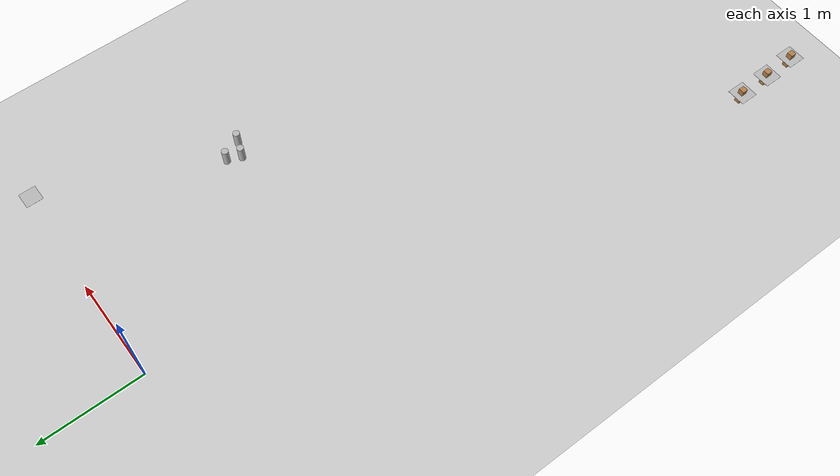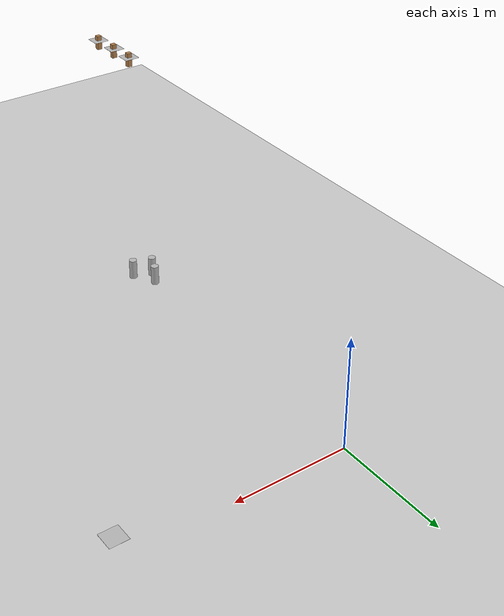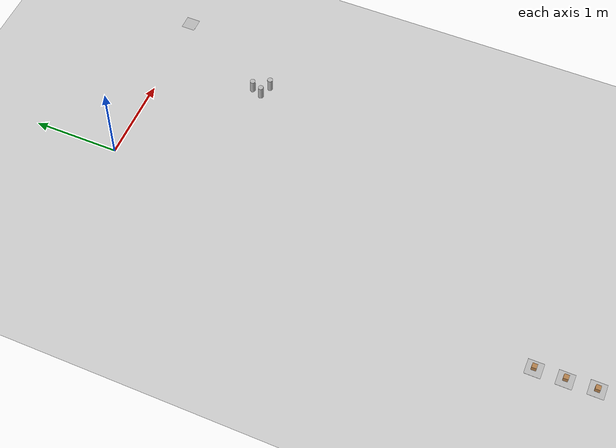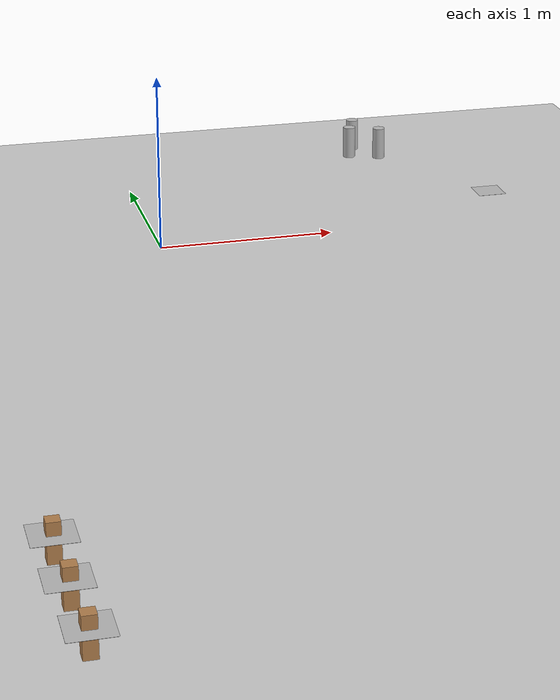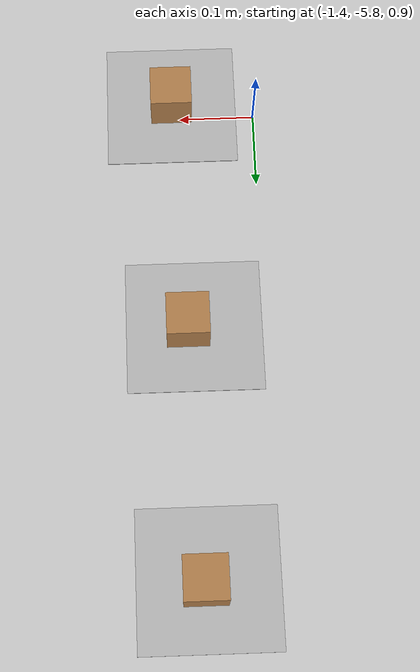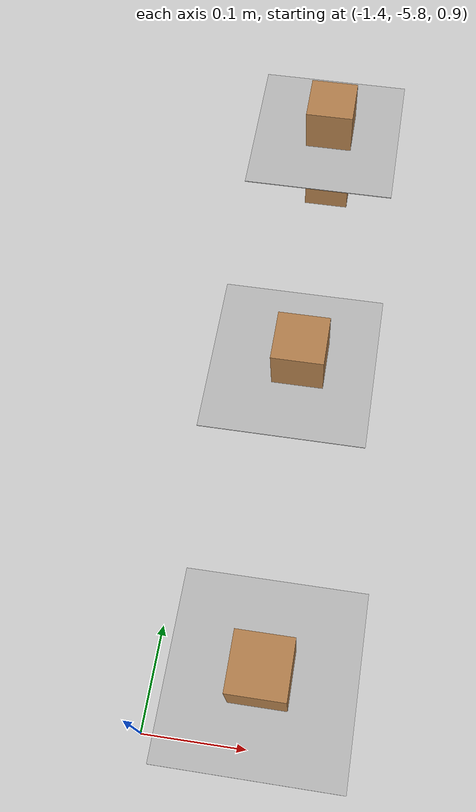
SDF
<sdf version="1.7">
 <world name="default">
  <plugin name="gazebo_ros_state" filename="libgazebo_ros_state.so">
   <ros><namespace>/gazebo</namespace></ros>
   <update_rate>1.0</update_rate>
  </plugin>
  <light name="sun" type="directional">
   <pose>0 0 10 0 -0 0</pose>
   <diffuse>0.8 0.8 0.8 1</diffuse>
   <specular>0.2 0.2 0.2 1</specular>
   <attenuation>
    <range>1000</range>
    <constant>0.9</constant>
    <linear>0.01</linear>
    <quadratic>0.001</quadratic>
   </attenuation>
   <direction>0 0.5 -0.9</direction>
   <spot><inner_angle>0</inner_angle><outer_angle>0</outer_angle><falloff>0</falloff></spot>
  </light>
  <light name="point_light" type="point">
   <pose>0 -0.377195 6.59868 0 -0 0</pose>
   <diffuse>0.784314 0.784314 0.784314 1</diffuse>
   <specular>0.0980392 0.0980392 0.0980392 1</specular>
   <attenuation>
    <range>50</range>
    <constant>0.8</constant>
    <linear>0</linear>
    <quadratic>0.001</quadratic>
   </attenuation>
   <cast_shadows>0</cast_shadows>
   <direction>0 0 -1</direction>
   <spot><inner_angle>0</inner_angle><outer_angle>0</outer_angle><falloff>0</falloff></spot>
  </light>
  <model name="ground_plane">
   <static>1</static>
   <link name="link">
    <collision name="collision">
     <geometry><plane><normal>0 0 1</normal><size>100 100</size></plane></geometry>
     <surface>
      <contact><collide_bitmask>65535</collide_bitmask></contact>
      <friction><ode><mu>100</mu><mu2>50</mu2></ode></friction>
     </surface>
    </collision>
    <visual name="visual">
     <cast_shadows>0</cast_shadows>
     <geometry><plane><normal>0 0 1</normal><size>100 100</size></plane></geometry>
     <material>
      <script><uri>file://media/materials/scripts/gazebo.material</uri><name>Gazebo/Grey</name></script>
     </material>
    </visual>
   </link>
  </model>
  <gravity>0 0 -9.8</gravity>
  <magnetic_field>6e-06 2.3e-05 -4.2e-05</magnetic_field>
  <atmosphere type="adiabatic"/>
  <physics type="ode">
   <max_step_size>0.001</max_step_size>
   <real_time_factor>1</real_time_factor>
   <real_time_update_rate>1000</real_time_update_rate>
  </physics>
  <scene><ambient>0.4 0.4 0.4 1</ambient><background>0.7 0.7 0.7 1</background><shadows>1</shadows></scene>
  <audio><device>default</device></audio>
  <spherical_coordinates>
   <surface_model>EARTH_WGS84</surface_model>
   <latitude_deg>0</latitude_deg>
   <longitude_deg>0</longitude_deg>
   <elevation>0</elevation>
   <heading_deg>0</heading_deg>
  </spherical_coordinates>
  <model name="biscuits_pack">
   <static>0</static>
   <link name="link">
    <inertial>
     <mass>0.25</mass>
     <inertia><ixx>0</ixx><ixy>0</ixy><ixz>0</ixz><iyy>0</iyy><iyz>0</iyz><izz>0</izz></inertia>
    </inertial>
    <collision name="collision">
     <geometry><cylinder><radius>0.029</radius><length>0.15</length></cylinder></geometry>
    </collision>
    <visual name="visual">
     <geometry><cylinder><radius>0.029</radius><length>0.15</length></cylinder></geometry>
     <material>
      <script>
       <uri>model://biscuits_pack/material/scripts</uri>
       <uri>model://biscuits_pack/material/textures</uri>
       <name>Custom/biscuits_pack</name>
      </script>
     </material>
    </visual>
    <velocity_decay><linear>0</linear><angular>0</angular></velocity_decay>
   </link>
   <pose>0.809202 -1.58807 1.05 -0.000336 0.000201 0.000398</pose>
  </model>
  <model name="biscuits_pack_0">
   <static>0</static>
   <link name="link">
    <inertial>
     <mass>0.25</mass>
     <inertia><ixx>0</ixx><ixy>0</ixy><ixz>0</ixz><iyy>0</iyy><iyz>0</iyz><izz>0</izz></inertia>
    </inertial>
    <collision name="collision">
     <geometry><cylinder><radius>0.029</radius><length>0.15</length></cylinder></geometry>
    </collision>
    <visual name="visual">
     <geometry><cylinder><radius>0.029</radius><length>0.15</length></cylinder></geometry>
     <material>
      <script>
       <uri>model://biscuits_pack/material/scripts</uri>
       <uri>model://biscuits_pack/material/textures</uri>
       <name>Custom/biscuits_pack</name>
      </script>
     </material>
    </visual>
    <velocity_decay><linear>0</linear><angular>0</angular></velocity_decay>
   </link>
   <pose>0.719947 -1.42331 1.05 -0.000238 0.000115 -0.000208</pose>
  </model>
  <model name="biscuits_pack_1">
   <static>0</static>
   <link name="link">
    <inertial>
     <mass>0.25</mass>
     <inertia><ixx>0</ixx><ixy>0</ixy><ixz>0</ixz><iyy>0</iyy><iyz>0</iyz><izz>0</izz></inertia>
    </inertial>
    <collision name="collision">
     <geometry><cylinder><radius>0.029</radius><length>0.15</length></cylinder></geometry>
    </collision>
    <visual name="visual">
     <geometry><cylinder><radius>0.029</radius><length>0.15</length></cylinder></geometry>
     <material>
      <script>
       <uri>model://biscuits_pack/material/scripts</uri>
       <uri>model://biscuits_pack/material/textures</uri>
       <name>Custom/biscuits_pack</name>
      </script>
     </material>
    </visual>
    <velocity_decay><linear>0</linear><angular>0</angular></velocity_decay>
   </link>
   <pose>0.673542 -1.53789 1.05001 -4.7e-05 -0.000206 -0.000167</pose>
  </model>
  <model name="aruco_marker_250_6x6_1">
   <static>0</static>
   <link name="marker">
    <inertial>
     <mass>1e-05</mass>
     <inertia><ixx>0</ixx><ixy>0</ixy><ixz>0</ixz><iyy>0</iyy><iyz>0</iyz><izz>0</izz></inertia>
    </inertial>
    <visual name="visual">
     <pose>0 0 0 0 -0 1.57</pose>
     <geometry><box><size>0.16 0.16 0.001</size></box></geometry>
     <material>
      <script>
       <uri>model://aruco_marker_250_6x6_1/material/scripts</uri>
       <uri>model://aruco_marker_250_6x6_1/material/textures</uri>
       <name>Aruco/aruco_marker_250_6x6_1</name>
      </script>
     </material>
    </visual>
    <collision name="collision"><geometry><box><size>0.16 0.16 0.001</size></box></geometry></collision>
    <self_collide>1</self_collide>
   </link>
   <pose>-1.31187 -5.1615 1.02449 3.1e-05 -2.8e-05 0.000256</pose>
  </model>
  <model name="aruco_marker_250_6x6_2">
   <static>0</static>
   <link name="marker">
    <inertial>
     <mass>1e-05</mass>
     <inertia><ixx>0</ixx><ixy>0</ixy><ixz>0</ixz><iyy>0</iyy><iyz>0</iyz><izz>0</izz></inertia>
    </inertial>
    <visual name="visual">
     <pose>0 0 0 0 -0 1.57</pose>
     <geometry><box><size>0.16 0.16 0.001</size></box></geometry>
     <material>
      <script>
       <uri>model://aruco_marker_250_6x6_2/material/scripts</uri>
       <uri>model://aruco_marker_250_6x6_2/material/textures</uri>
       <name>Aruco/aruco_marker_250_6x6_2</name>
      </script>
     </material>
    </visual>
    <collision name="collision"><geometry><box><size>0.16 0.16 0.001</size></box></geometry></collision>
    <self_collide>1</self_collide>
   </link>
   <pose>-1.3069 -5.45594 1.02449 3e-06 -5.7e-05 0.000112</pose>
  </model>
  <model name="aruco_marker_250_6x6_3">
   <static>0</static>
   <link name="marker">
    <inertial>
     <mass>1e-05</mass>
     <inertia><ixx>0</ixx><ixy>0</ixy><ixz>0</ixz><iyy>0</iyy><iyz>0</iyz><izz>0</izz></inertia>
    </inertial>
    <visual name="visual">
     <pose>0 0 0 0 -0 1.57</pose>
     <geometry><box><size>0.16 0.16 0.001</size></box></geometry>
     <material>
      <script>
       <uri>model://aruco_marker_250_6x6_3/material/scripts</uri>
       <uri>model://aruco_marker_250_6x6_3/material/textures</uri>
       <name>Aruco/aruco_marker_250_6x6_3</name>
      </script>
     </material>
    </visual>
    <collision name="collision"><geometry><box><size>0.16 0.16 0.001</size></box></geometry></collision>
    <self_collide>1</self_collide>
   </link>
   <pose>-1.28891 -5.75127 1.02449 7e-06 -6e-06 -9e-06</pose>
  </model>
  <model name="aruco_marker_250_6x6_4">
   <static>0</static>
   <link name="marker">
    <inertial>
     <mass>1e-05</mass>
     <inertia><ixx>0</ixx><ixy>0</ixy><ixz>0</ixz><iyy>0</iyy><iyz>0</iyz><izz>0</izz></inertia>
    </inertial>
    <visual name="visual">
     <pose>0 0 0 0 -0 1.57</pose>
     <geometry><box><size>0.16 0.16 0.001</size></box></geometry>
     <material>
      <script>
       <uri>model://aruco_marker_250_6x6_4/material/scripts</uri>
       <uri>model://aruco_marker_250_6x6_4/material/textures</uri>
       <name>Aruco/aruco_marker_250_6x6_4</name>
      </script>
     </material>
    </visual>
    <collision name="collision"><geometry><box><size>0.16 0.16 0.001</size></box></geometry></collision>
    <self_collide>1</self_collide>
   </link>
   <pose>1.94316 -0.041802 0.1903 -3e-06 2e-06 4.1e-05</pose>
  </model>
  <model name="wood_cube_5cm">
   <link name="link">
    <pose>0 0 0.025 0 -0 0</pose>
    <inertial>
     <mass>0.001</mass>
     <inertia>
      <ixx>2.35417e-05</ixx>
      <ixy>0</ixy>
      <ixz>0</ixz>
      <iyy>2.35417e-05</iyy>
      <iyz>0</iyz>
      <izz>2.35417e-05</izz>
     </inertia>
    </inertial>
    <collision name="collision">
     <geometry><box><size>0.05 0.05 0.15</size></box></geometry>
     <surface>
      <contact>
       <poissons_ratio>0.347</poissons_ratio>
       <elastic_modulus>8.8e+09</elastic_modulus>
       <ode><kp>100000</kp><kd>1</kd><max_vel>1</max_vel><min_depth>0.001</min_depth></ode>
      </contact>
      <friction>
       <torsional>
        <coefficient>1</coefficient>
        <use_patch_radius>0</use_patch_radius>
        <surface_radius>0.05</surface_radius>
       </torsional>
       <ode><mu>1</mu><mu2>1</mu2><slip1>0</slip1><slip2>0</slip2></ode>
      </friction>
     </surface>
    </collision>
    <visual name="visual">
     <geometry><box><size>0.05 0.05 0.15</size></box></geometry>
     <material>
      <script><uri>file://media/materials/scripts/gazebo.material</uri><name>Gazebo/Wood</name></script>
     </material>
    </visual>
    <collision name="collision_top">
     <pose>0 0 0.08 0 -0 0</pose>
     <geometry><box><size>0.07 0.07 0.02</size></box></geometry>
     <surface><friction><ode><mu>1</mu><mu2>1</mu2><slip1>0</slip1><slip2>0</slip2></ode></friction></surface>
    </collision>
   </link>
   <pose>-1.30821 -5.15756 0.973996 1.5e-05 -1.4e-05 0.00025</pose>
  </model>
  <model name="wood_cube_5cm_0">
   <link name="link">
    <pose>0 0 0.025 0 -0 0</pose>
    <inertial>
     <mass>0.001</mass>
     <inertia>
      <ixx>2.35417e-05</ixx>
      <ixy>0</ixy>
      <ixz>0</ixz>
      <iyy>2.35417e-05</iyy>
      <iyz>0</iyz>
      <izz>2.35417e-05</izz>
     </inertia>
    </inertial>
    <collision name="collision">
     <geometry><box><size>0.05 0.05 0.15</size></box></geometry>
     <surface>
      <contact>
       <poissons_ratio>0.347</poissons_ratio>
       <elastic_modulus>8.8e+09</elastic_modulus>
       <ode><kp>100000</kp><kd>1</kd><max_vel>1</max_vel><min_depth>0.001</min_depth></ode>
      </contact>
      <friction>
       <torsional>
        <coefficient>1</coefficient>
        <use_patch_radius>0</use_patch_radius>
        <surface_radius>0.05</surface_radius>
       </torsional>
       <ode><mu>1</mu><mu2>1</mu2><slip1>0</slip1><slip2>0</slip2></ode>
      </friction>
     </surface>
    </collision>
    <visual name="visual">
     <geometry><box><size>0.05 0.05 0.15</size></box></geometry>
     <material>
      <script><uri>file://media/materials/scripts/gazebo.material</uri><name>Gazebo/Wood</name></script>
     </material>
    </visual>
    <collision name="collision_top">
     <pose>0 0 0.08 0 -0 0</pose>
     <geometry><box><size>0.07 0.07 0.02</size></box></geometry>
     <surface><friction><ode><mu>1</mu><mu2>1</mu2><slip1>0</slip1><slip2>0</slip2></ode></friction></surface>
    </collision>
   </link>
   <pose>-1.29951 -5.45549 0.973996 2e-06 -2.9e-05 8.7e-05</pose>
  </model>
  <model name="wood_cube_5cm_1">
   <link name="link">
    <pose>0 0 0.025 0 -0 0</pose>
    <inertial>
     <mass>0.001</mass>
     <inertia>
      <ixx>2.35417e-05</ixx>
      <ixy>0</ixy>
      <ixz>0</ixz>
      <iyy>2.35417e-05</iyy>
      <iyz>0</iyz>
      <izz>2.35417e-05</izz>
     </inertia>
    </inertial>
    <collision name="collision">
     <geometry><box><size>0.05 0.05 0.15</size></box></geometry>
     <surface>
      <contact>
       <poissons_ratio>0.347</poissons_ratio>
       <elastic_modulus>8.8e+09</elastic_modulus>
       <ode><kp>100000</kp><kd>1</kd><max_vel>1</max_vel><min_depth>0.001</min_depth></ode>
      </contact>
      <friction>
       <torsional>
        <coefficient>1</coefficient>
        <use_patch_radius>0</use_patch_radius>
        <surface_radius>0.05</surface_radius>
       </torsional>
       <ode><mu>1</mu><mu2>1</mu2><slip1>0</slip1><slip2>0</slip2></ode>
      </friction>
     </surface>
    </collision>
    <visual name="visual">
     <geometry><box><size>0.05 0.05 0.15</size></box></geometry>
     <material>
      <script><uri>file://media/materials/scripts/gazebo.material</uri><name>Gazebo/Wood</name></script>
     </material>
    </visual>
    <collision name="collision_top">
     <pose>0 0 0.08 0 -0 0</pose>
     <geometry><box><size>0.07 0.07 0.02</size></box></geometry>
     <surface><friction><ode><mu>1</mu><mu2>1</mu2><slip1>0</slip1><slip2>0</slip2></ode></friction></surface>
    </collision>
   </link>
   <pose>-1.2888 -5.75127 0.973996 4e-06 -3e-06 1e-06</pose>
  </model>
 </world>
</sdf>
